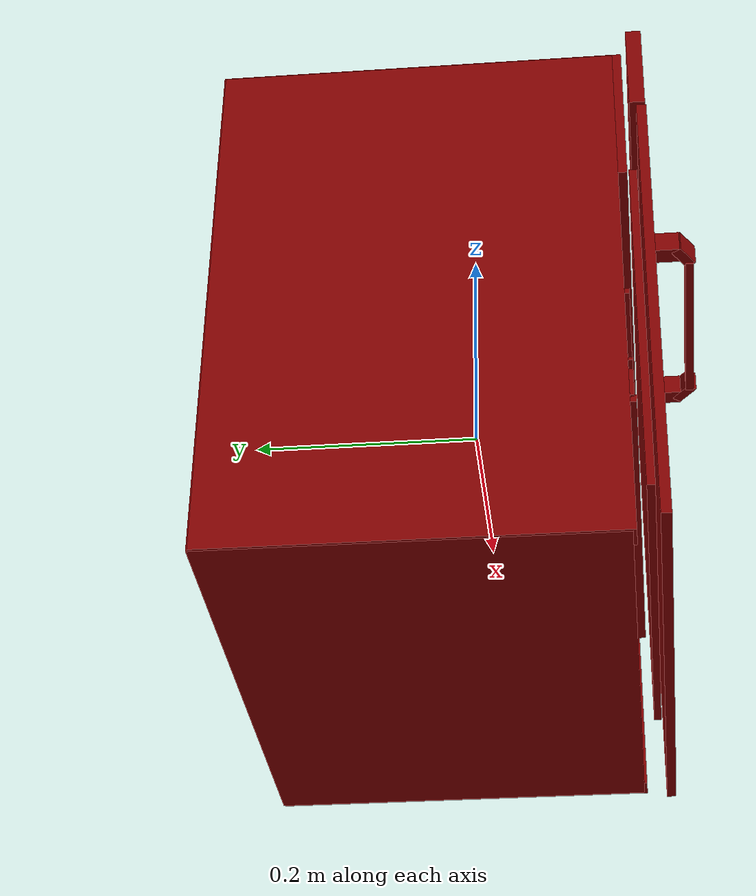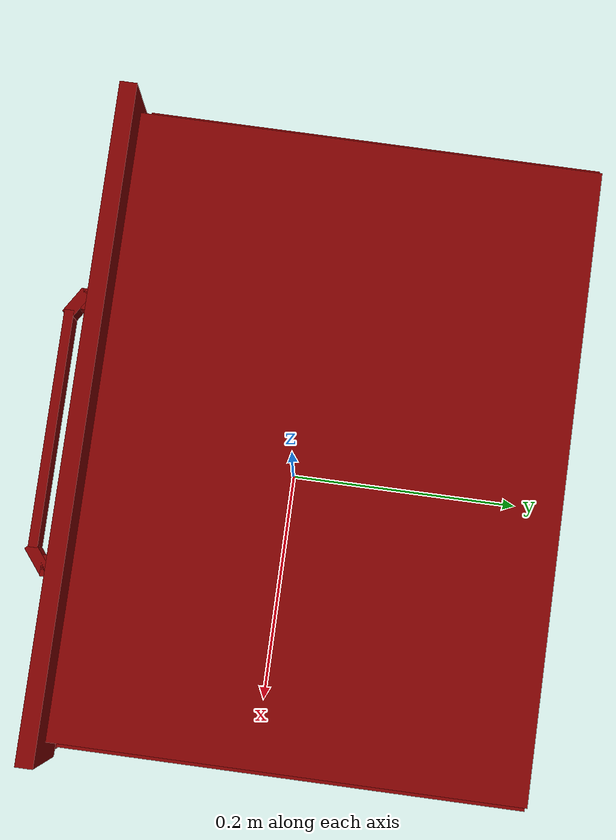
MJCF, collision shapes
<mujoco model="model">
  <compiler angle="radian"/>
  <asset>
    <mesh file="visuals/Body001.obj" name="Body001_vis"/>
    <mesh file="visuals/Door001.obj" name="Door001_vis"/>
    <mesh file="visuals/Door001_Clear.obj" name="Door001_Clear_vis"/>
    <mesh file="visuals/Shelf001.obj" name="Shelf001_vis"/>
    <mesh file="visuals/Shelf002.obj" name="Shelf002_vis"/>
    <texture file="visuals/T_BC001.png" name="Body001_material" type="2d"/>
    <material name="Body001_material" rgba="1 1 1 1.0" texture="Body001_material" shininess="0.5" specular="0.3103448502657381"/>
    <texture file="visuals/T_BC001.png" name="Door001_material" type="2d"/>
    <material name="Door001_material" rgba="1 1 1 1.0" texture="Door001_material" shininess="0.5" specular="0.3103448502657381"/>
    <texture file="visuals/T_BC001.png" name="Door001_Clear_material" type="2d"/>
    <material name="Door001_Clear_material" rgba="1 1 1 0.800000011920929" texture="Door001_Clear_material" shininess="0.5" specular="0.3103448502657381"/>
    <texture file="visuals/T_BC001.png" name="Shelf001_material" type="2d"/>
    <material name="Shelf001_material" rgba="1 1 1 1.0" texture="Shelf001_material" shininess="0.5" specular="0.3103448502657381"/>
    <texture file="visuals/T_BC001.png" name="Shelf002_material" type="2d"/>
    <material name="Shelf002_material" rgba="1 1 1 1.0" texture="Shelf002_material" shininess="0.5" specular="0.3103448502657381"/>
  </asset>
  <default>
    <default class="visual">
      <geom conaffinity="0" contype="0" group="1" type="mesh"/>
    </default>
    <default class="collision">
      <geom group="0" rgba="0.5 0 0 0.5"/>
    </default>
    <default class="spawn">
      <geom group="0" rgba="1 1 1 0.5" contype="0" conaffinity="0"/>
      <site group="0" rgba="1 1 1 0.5"/>
    </default>
    <default class="region">
      <geom group="1" conaffinity="0" contype="0" rgba="0 1 0 0"/>
    </default>
  </default>
  <worldbody>
    <body>
      <body name="object">
        <geom mesh="Body001_vis" type="mesh" solimp="0.998 0.998 0.001" solref="0.001 1" density="100" friction="0.95 0.3 0.1" class="visual" material="Body001_material"/>
        <geom class="collision" type="box" pos="0.0 0.18050765991210938 -0.004726151004433632" size="0.23460212349891663 0.02136264368891716 0.23982356488704681" quat="1.0 0.0 0.0 0.0"/>
        <geom class="collision" type="box" pos="0.22643695771694183 0.03114050254225731 -0.004726149141788483" size="0.010839049704372883 0.16938138008117676 0.23983299732208252" quat="1.0 0.0 0.0 0.0"/>
        <geom class="collision" type="box" pos="-0.22508664429187775 0.03114050254225731 -0.004726149141788483" size="0.011361799202859402 0.16938138008117676 0.23983299732208252" quat="1.0 0.0 0.0 0.0"/>
        <geom class="collision" type="box" pos="-5.170984272627039e-17 0.02792910486459732 0.1705418974161148" size="0.23460212349891663 0.17394119501113892 0.06687834113836288" quat="1.0 0.0 0.0 0.0"/>
        <geom class="collision" type="box" pos="-2.154970777837499e-23 0.03321816399693489 -0.21464495360851288" size="0.2345951348543167 0.16865210235118866 0.030426887795329094" quat="1.0 0.0 0.0 0.0"/>
        <geom class="collision" type="box" pos="-4.542375645306756e-17 -0.15723027288913727 0.20423994958400726" size="0.2540479600429535 0.006626791320741177 0.04083189740777016" quat="1.0 0.0 0.0 0.0"/>
        <geom class="collision" type="box" pos="-0.20844478905200958 0.0040460205636918545 0.060504816472530365" size="0.0037520965561270714 0.1316951960325241 0.0015350169269368052" quat="1.0 0.0 0.0 0.0"/>
        <geom class="collision" type="box" pos="-0.20844478905200958 0.0040460205636918545 0.028862453997135162" size="0.0037520965561270714 0.1316951960325241 0.0015350169269368052" quat="1.0 0.0 0.0 0.0"/>
        <geom class="collision" type="box" pos="-0.20844478905200958 0.0040460205636918545 -0.007044747471809387" size="0.0037520965561270714 0.1316951960325241 0.0015350169269368052" quat="1.0 0.0 0.0 0.0"/>
        <geom class="collision" type="box" pos="-0.20844478905200958 0.0040460205636918545 -0.041301045566797256" size="0.0037520965561270714 0.1316951960325241 0.0015350169269368052" quat="1.0 0.0 0.0 0.0"/>
        <geom class="collision" type="box" pos="-0.20844478905200958 0.0040460205636918545 -0.07452308386564255" size="0.0037520965561270714 0.1316951960325241 0.0015350169269368052" quat="1.0 0.0 0.0 0.0"/>
        <geom class="collision" type="box" pos="-0.20844478905200958 0.0040460205636918545 -0.10770630836486816" size="0.0037520965561270714 0.1316951960325241 0.0015350169269368052" quat="1.0 0.0 0.0 0.0"/>
        <geom class="collision" type="box" pos="-0.20844478905200958 0.0040460205636918545 -0.14254043996334076" size="0.0037520965561270714 0.1316951960325241 0.0015350169269368052" quat="1.0 0.0 0.0 0.0"/>
        <geom class="collision" type="box" pos="-0.21232591569423676 -0.127219095826149 -0.042481325566768646" size="0.0017105307197198272 0.10056135803461075 0.0015350169269368052" quat="0.7071068286895752 0.7071067690849304 1.5700924318127872e-16 5.9269340452702814e-24"/>
        <geom class="collision" type="box" pos="-0.21232591569423676 0.1336628496646881 -0.042481325566768646" size="0.0017105307197198272 0.10056135803461075 0.0015350169269368052" quat="0.7071068286895752 0.7071067690849304 1.5700924318127872e-16 5.9269340452702814e-24"/>
        <geom class="collision" type="box" pos="0.21071185171604156 0.0023977330420166254 0.060504812747240067" size="0.0037520965561270714 0.1316951960325241 0.0015350169269368052" quat="7.549790126404332e-08 0.0 -0.0 -1.0"/>
        <geom class="collision" type="box" pos="0.21071185171604156 0.0023977330420166254 0.028862450271844864" size="0.0037520965561270714 0.1316951960325241 0.0015350169269368052" quat="7.549790126404332e-08 0.0 -0.0 -1.0"/>
        <geom class="collision" type="box" pos="0.21071185171604156 0.0023977330420166254 -0.007044747471809387" size="0.0037520965561270714 0.1316951960325241 0.0015350169269368052" quat="7.549790126404332e-08 0.0 -0.0 -1.0"/>
        <geom class="collision" type="box" pos="0.21071185171604156 0.0023977330420166254 -0.041301045566797256" size="0.0037520965561270714 0.1316951960325241 0.0015350169269368052" quat="7.549790126404332e-08 0.0 -0.0 -1.0"/>
        <geom class="collision" type="box" pos="0.21071185171604156 0.0023977330420166254 -0.07452308386564255" size="0.0037520965561270714 0.1316951960325241 0.0015350169269368052" quat="7.549790126404332e-08 0.0 -0.0 -1.0"/>
        <geom class="collision" type="box" pos="0.21071185171604156 0.0023977330420166254 -0.10770630836486816" size="0.0037520965561270714 0.1316951960325241 0.0015350169269368052" quat="7.549790126404332e-08 0.0 -0.0 -1.0"/>
        <geom class="collision" type="box" pos="0.21071185171604156 0.0023977330420166254 -0.14254043996334076" size="0.0037520965561270714 0.1316951960325241 0.0015350169269368052" quat="7.549790126404332e-08 0.0 -0.0 -1.0"/>
        <geom class="collision" type="box" pos="0.21459296345710754 0.1336628645658493 -0.042481325566768646" size="0.0017105307197198272 0.10056135803461075 0.0015350169269368052" quat="5.338507946817117e-08 5.338507591545749e-08 -0.7071067690849304 -0.7071068286895752"/>
        <geom class="collision" type="box" pos="0.21459299325942993 -0.12721911072731018 -0.042481325566768646" size="0.0017105307197198272 0.10056135803461075 0.0015350169269368052" quat="5.338507946817117e-08 5.338507591545749e-08 -0.7071067690849304 -0.7071068286895752"/>
        <body name="Door001">
          <joint axis="1.0 0.0 0.0" pos="5.314169567532213e-17 -0.16363997757434845 -0.23932892084121704" limited="true" name="Door001_joint" range="0.0 1.15" type="hinge" damping="5" frictionloss="1" armature=".01" stiffness="0.05" springref="-1"/>
          <geom mesh="Door001_vis" type="mesh" solimp="0.998 0.998 0.001" solref="0.001 1" density="100" friction="0.95 0.3 0.1" class="visual" material="Door001_material"/>
          <geom class="collision" type="box" pos="-0.00017325728549622 -0.16048644483089447 -0.04049410670995712" size="0.25299128890037537 0.0042596119455993176 0.20142371952533722" quat="1.0 0.0 0.0 0.0"/>
          <geom class="collision" type="box" pos="0.10989735275506973 -0.1770702451467514 0.1203746572136879" size="0.00873653031885624 0.01235143095254898 0.009503255598247051" quat="1.0 0.0 0.0 0.0"/>
          <geom class="collision" type="box" pos="-0.0014740696642547846 -0.19816139340400696 0.1199285089969635" size="0.09792984277009964 0.0038525983691215515 0.010409027338027954" quat="1.0 0.0 0.0 0.0"/>
          <geom class="collision" type="box" pos="-0.11008521169424057 -0.1770702451467514 0.1203746572136879" size="0.00873653031885624 0.01235143095254898 0.009503255598247051" quat="1.0 0.0 0.0 0.0"/>
          <geom class="collision" type="box" pos="-0.10588477551937103 -0.19291187822818756 0.1203746572136879" size="0.004945356864482164 0.012351430021226406 0.009503255598247051" quat="0.8756958246231079 0.0 0.0 0.4828631281852722"/>
          <geom class="collision" type="box" pos="0.10485684126615524 -0.19315189123153687 0.1203746572136879" size="0.004945356864482164 0.01235143095254898 0.009503255598247051" quat="0.4391418993473053 0.0 0.0 0.8984177112579346"/>
          <body name="Door001_Clear">
            <geom mesh="Door001_Clear_vis" type="mesh" solimp="0.998 0.998 0.001" solref="0.001 1" density="100" friction="0.95 0.3 0.1" class="visual" material="Door001_Clear_material"/>
            <geom class="collision" type="box" pos="-0.0022636610083281994 -0.15104342997074127 -0.028847571462392807" size="0.20444582402706146 0.003357707289978862 0.15877658128738403" quat="1.0 0.0 0.0 0.0"/>
          </body>
        </body>
        <body name="Shelf001">
          <joint axis="0.0 -1.0 0.0" pos="0.0019009001553058624 0.003189456183463335 -0.0022508730180561543" limited="true" name="Shelf001_joint" range="0.0 0.25" type="slide" damping="1" frictionloss="1" armature=".01" stiffness="0.05"/>
          <geom mesh="Shelf001_vis" type="mesh" solimp="0.998 0.998 0.001" solref="0.001 1" density="100" friction="0.95 0.3 0.1" class="visual" material="Shelf001_material"/>
          <geom class="collision" type="box" pos="0.001498187193647027 0.004046028945595026 -0.0009444097522646189" size="0.21051464974880219 0.14658178389072418 0.0023848230484873056" quat="1.0 0.0 0.0 0.0"/>
        </body>
        <body name="Shelf002">
          <joint axis="0.0 -1.0 0.0" pos="0.0008335974416695535 0.003189469687640667 -0.0861123651266098" limited="true" name="Shelf002_joint" range="0.0 0.25" type="slide" damping="1" frictionloss="1" armature=".01" stiffness="0.05"/>
          <geom mesh="Shelf002_vis" type="mesh" solimp="0.998 0.998 0.001" solref="0.001 1" density="100" friction="0.95 0.3 0.1" class="visual" material="Shelf002_material"/>
          <geom class="collision" type="box" pos="0.001498187193647027 0.004046028945595026 -0.09911735355854034" size="0.19799493253231049 0.1479298174381256 0.0033048056066036224" quat="1.0 0.0 0.0 0.0"/>
          <geom class="collision" type="box" pos="0.1983078271150589 0.004046029411256313 -0.08437518775463104" size="0.0017493541818112135 0.14622405171394348 0.012357254512608051" quat="1.0 0.0 0.0 0.0"/>
          <geom class="collision" type="box" pos="-0.19658930599689484 0.004046029411256313 -0.0835697203874588" size="0.002222978975623846 0.1462242305278778 0.013753561303019524" quat="1.0 0.0 0.0 0.0"/>
          <geom class="collision" type="box" pos="-0.2030797004699707 0.004046027548611164 -0.0700896680355072" size="0.0014260637108236551 0.1462242305278778 0.006370392628014088" quat="0.677474856376648 -5.197932538493662e-14 0.7355459332466125 9.882714380182733e-08"/>
          <geom class="collision" type="box" pos="0.2049255669116974 0.004046027548611164 -0.07028138637542725" size="0.0013065115781500936 0.1462242305278778 0.006370392628014088" quat="5.284251258785844e-08 0.7355459332466125 -5.284258364213201e-08 -0.677474856376648"/>
        </body>
        <geom class="region" name="reg_main" type="box" pos="7.450580596923828e-09 0.018126726150512695 0.0" size="0.2540479600429535 0.18374356627464294 0.24507182836532593"/>
        <geom class="region" name="reg_int" type="box" pos="0.001534491777420044 0.009094305336475372 -0.04015860706567764" size="0.2068977952003479 0.14929483085870743 0.1413673833012581"/>
      </body>
    </body>
  </worldbody>
  <actuator>
    <motor name="Door001_joint_actuator" joint="Door001_joint" gear="30"/>
    <motor name="Shelf001_joint_actuator" joint="Shelf001_joint" gear="10"/>
    <motor name="Shelf002_joint_actuator" joint="Shelf002_joint" gear="10"/>
  </actuator>
</mujoco>
